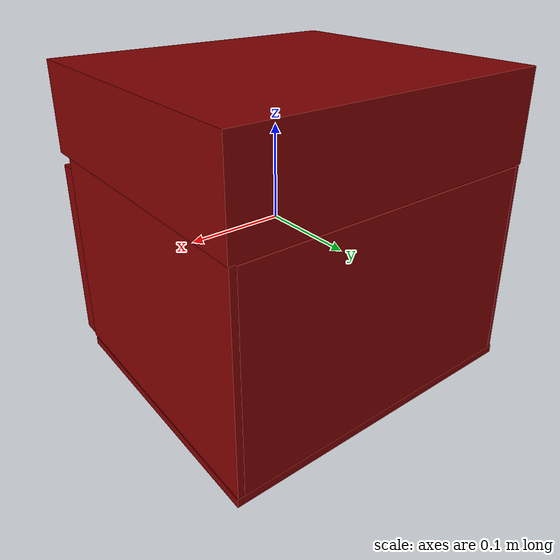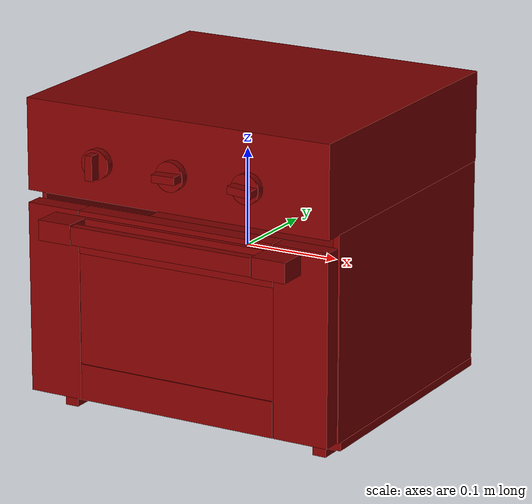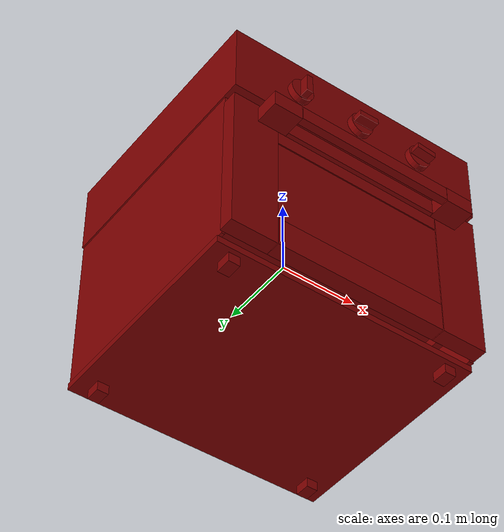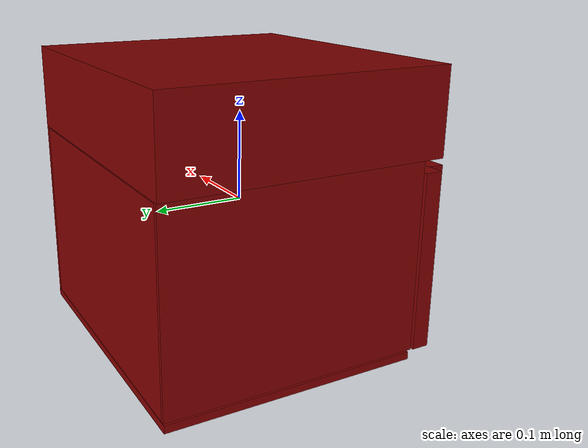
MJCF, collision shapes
<?xml version='1.0' encoding='UTF-8'?>
<mujoco model="model">
  <compiler angle="radian"/>
  <asset>
    <mesh file="visuals/Body001.obj" name="Body001_vis"/>
    <mesh file="visuals/Door001.obj" name="Door001_vis"/>
    <mesh file="visuals/Door001_Clear.obj" name="Door001_Clear_vis"/>
    <mesh file="visuals/Knob001.obj" name="Knob001_vis"/>
    <mesh file="visuals/Knob002.obj" name="Knob002_vis"/>
    <mesh file="visuals/Knob003.obj" name="Knob003_vis"/>
    <mesh file="visuals/Shelf001.obj" name="Shelf001_vis"/>
    <mesh file="visuals/Shelf002.obj" name="Shelf002_vis"/>
    <texture file="visuals/T_BC001.png" name="Body001_material" type="2d"/>
    <material name="Body001_material" rgba="1 1 1 1.0" texture="Body001_material" shininess="0.40476077795028687" specular="1.5"/>
    <texture file="visuals/T_BC001.png" name="Door001_material" type="2d"/>
    <material name="Door001_material" rgba="1 1 1 1.0" texture="Door001_material" shininess="0.40476077795028687" specular="0.5"/>
    <texture file="visuals/T_BC001.png" name="Door001_Clear_material" type="2d"/>
    <material name="Door001_Clear_material" rgba="1 1 1 0.800000011920929" texture="Door001_Clear_material" shininess="0.5" specular="0.3103448502657381"/>
    <texture file="visuals/T_BC001.png" name="Knob001_material" type="2d"/>
    <material name="Knob001_material" rgba="1 1 1 1.0" texture="Knob001_material" shininess="0.40476077795028687" specular="0.3103448502657381"/>
    <texture file="visuals/T_BC001.png" name="Knob002_material" type="2d"/>
    <material name="Knob002_material" rgba="1 1 1 1.0" texture="Knob002_material" shininess="0.40476077795028687" specular="0.3103448502657381"/>
    <texture file="visuals/T_BC001.png" name="Knob003_material" type="2d"/>
    <material name="Knob003_material" rgba="1 1 1 1.0" texture="Knob003_material" shininess="0.40476077795028687" specular="0.3103448502657381"/>
    <texture file="visuals/T_BC001.png" name="Shelf001_material" type="2d"/>
    <material name="Shelf001_material" rgba="1 1 1 1.0" texture="Shelf001_material" shininess="0.40476077795028687" specular="2"/>
    <texture file="visuals/T_BC001.png" name="Shelf002_material" type="2d"/>
    <material name="Shelf002_material" rgba="1 1 1 1.0" texture="Shelf002_material" shininess="0.40476077795028687" specular="2"/>
  </asset>
  <default>
    <default class="visual">
      <geom conaffinity="0" contype="0" group="1" type="mesh"/>
    </default>
    <default class="collision">
      <geom group="0" rgba="0.5 0 0 0.5"/>
    </default>
    <default class="spawn">
      <geom group="0" rgba="1 1 1 0.5" contype="0" conaffinity="0"/>
      <site group="0" rgba="1 1 1 0.5"/>
    </default>
    <default class="region">
      <geom group="1" conaffinity="0" contype="0" rgba="0 1 0 0"/>
    </default>
  </default>
  <worldbody>
    <body>
      <body name="object">
        <geom mesh="Body001_vis" type="mesh" solimp="0.998 0.998 0.001" solref="0.001 1" density="100" friction="0.95 0.3 0.1" class="visual" material="Body001_material"/>
        <geom class="collision" type="box" pos="0.000129 0.014205 0.115347" size="0.16799390316009521 0.15449689328670502 0.046898286789655685" quat="1.0 0.0 0.0 0.0"/>
        <geom class="collision" type="box" pos="0.000129 0.027268 -0.146551" size="0.16799390316009521 0.14143456518650055 0.004279122222214937" quat="1.0 0.0 0.0 0.0"/>
        <geom class="collision" type="box" pos="0.164412 0.024972 -0.036548" size="0.003169992472976446 0.14373032748699188 0.10511252284049988" quat="1.0 0.0 0.0 0.0"/>
        <geom class="collision" type="box" pos="-0.163892 0.024972 -0.036548" size="0.0020520328544080257 0.14373034238815308 0.10511252284049988" quat="1.0 0.0 0.0 0.0"/>
        <geom class="collision" type="box" pos="-0.000447 0.155160 -0.037226" size="0.1614246666431427 0.013542283326387405 0.10444756597280502" quat="1.0 0.0 0.0 0.0"/>
        <geom class="collision" type="box" pos="0.154903 0.019328 -0.086268" size="0.00484692445024848 0.12642931938171387 0.0063050612807273865" quat="1.0 0.0 0.0 0.0"/>
        <geom class="collision" type="box" pos="0.154903 0.019328 -0.024174" size="0.00484692445024848 0.12642931938171387 0.0063050612807273865" quat="1.0 0.0 0.0 0.0"/>
        <geom class="collision" type="box" pos="-0.155905 0.019328 -0.024174" size="0.00484692445024848 0.12642931938171387 0.0063050612807273865" quat="1.0 0.0 0.0 0.0"/>
        <geom class="collision" type="box" pos="-0.155905 0.019328 -0.086268" size="0.00484692445024848 0.12642931938171387 0.0063050612807273865" quat="1.0 0.0 0.0 0.0"/>
        <geom class="collision" type="box" pos="-0.142190 -0.098611 -0.156741" size="0.007177562452852726 0.009858162142336369 0.0062631466425955296" quat="1.0 0.0 0.0 0.0"/>
        <geom class="collision" type="box" pos="0.141914 -0.098611 -0.156741" size="0.007177562452852726 0.009858162142336369 0.0062631466425955296" quat="1.0 0.0 0.0 0.0"/>
        <geom class="collision" type="box" pos="0.141914 0.146397 -0.156741" size="0.007177562452852726 0.009858162142336369 0.0062631466425955296" quat="1.0 0.0 0.0 0.0"/>
        <geom class="collision" type="box" pos="-0.142190 0.146397 -0.156741" size="0.007177562452852726 0.009858162142336369 0.0062631466425955296" quat="1.0 0.0 0.0 0.0"/>
        <body name="Door001">
          <joint axis="1.0 0.0 0.0" pos="0.000000 -0.130478 -0.138188" limited="true" name="Door001_joint" range="0.0 1.5707963267948966" type="hinge" damping="1" frictionloss="1" armature=".01" stiffness="0.4" springref="-2"/>
          <geom mesh="Door001_vis" type="mesh" solimp="0.998 0.998 0.001" solref="0.001 1" density="100" friction="0.95 0.3 0.1" class="visual" material="Door001_material"/>
          <geom class="collision" type="box" pos="-0.139651 -0.129979 -0.042741" size="0.028908470645546913 0.009729273617267609 0.09801409393548965" quat="1.0 0.0 0.0 0.0"/>
          <geom class="collision" type="box" pos="0.137514 -0.129979 -0.042741" size="0.02929525636136532 0.009729273617267609 0.09801409393548965" quat="1.0 0.0 0.0 0.0"/>
          <geom class="collision" type="box" pos="-0.001434 -0.129979 -0.122029" size="0.10868487507104874 0.009729273617267609 0.018725590780377388" quat="1.0 0.0 0.0 0.0"/>
          <geom class="collision" type="box" pos="-0.001434 -0.129979 0.033646" size="0.10868487507104874 0.009729273617267609 0.021839696913957596" quat="1.0 0.0 0.0 0.0"/>
          <geom class="collision" type="box" pos="0.000353 -0.165753 0.039765" size="0.10052364319562912 0.004941307939589024 0.009371878579258919" quat="1.0 0.0 0.0 0.0"/>
          <geom class="collision" type="box" pos="0.000353 -0.141903 0.039826" size="0.10052364319562912 0.003314411034807563 0.010362689383327961" quat="1.0 0.0 0.0 0.0"/>
          <geom class="collision" type="box" pos="0.119537 -0.154512 0.039826" size="0.0181875079870224 0.015924016013741493 0.010362689383327961" quat="1.0 0.0 0.0 0.0"/>
          <geom class="collision" type="box" pos="-0.118908 -0.154512 0.039826" size="0.0181875079870224 0.015924016013741493 0.010362689383327961" quat="1.0 0.0 0.0 0.0"/>
          <body name="Door001_Clear">
            <geom mesh="Door001_Clear_vis" type="mesh" solimp="0.998 0.998 0.001" solref="0.001 1" density="100" friction="0.95 0.3 0.1" class="visual" material="Door001_Clear_material"/>
            <geom class="collision" type="box" pos="-0.001277 -0.133813 -0.045837" size="0.10990311950445175 0.004647101275622845 0.05809466168284416" quat="1.0 0.0 0.0 0.0"/>
          </body>
        </body>
        <body name="Knob001">
          <joint axis="0.0 1.0 0.0" pos="-0.083965 -0.149826 0.108350" limited="true" name="Knob001_joint" range="0.0 3.9269908169872414" type="hinge" damping="0.05" armature="0.001"/>
          <geom mesh="Knob001_vis" type="mesh" solimp="0.998 0.998 0.001" solref="0.001 1" density="100" friction="0.95 0.3 0.1" class="visual" material="Knob001_material"/>
          <geom class="collision" type="cylinder" pos="-0.084027 -0.146483 0.108434" size="0.015089793130755424 0.004180982243269682" quat="0.29001113772392273 0.29001107811927795 -0.6448981761932373 0.6448980569839478"/>
          <geom class="collision" type="box" pos="-0.083621 -0.156136 0.107884" size="0.003915501292794943 0.006732615176588297 0.012667737901210785" quat="0.0012701309751719236 0.0 0.9999991655349731 0.0"/>
        </body>
        <body name="Knob002">
          <joint axis="0.0 1.0 0.0" pos="-0.000245 -0.149826 0.108350" limited="true" name="Knob002_joint" range="0.0 3.3161255787892263" type="hinge" damping="0.05" armature="0.001"/>
          <geom mesh="Knob002_vis" type="mesh" solimp="0.998 0.998 0.001" solref="0.001 1" density="100" friction="0.95 0.3 0.1" class="visual" material="Knob002_material"/>
          <geom class="collision" type="cylinder" pos="-0.000365 -0.146483 0.108434" size="0.015089793130755424 0.004180982243269682" quat="0.29001113772392273 0.29001107811927795 -0.6448981761932373 0.6448980569839478"/>
          <geom class="collision" type="box" pos="0.000041 -0.156136 0.108668" size="0.003915501292794943 0.006732615176588297 0.012667737901210785" quat="0.7162219882011414 0.0 0.697872519493103 0.0"/>
        </body>
        <body name="Knob003">
          <joint axis="0.0 1.0 0.0" pos="0.083031 -0.149826 0.108350" limited="true" name="Knob003_joint" range="0.0 3.3161255787892263" type="hinge" damping="0.05" armature="0.001"/>
          <geom mesh="Knob003_vis" type="mesh" solimp="0.998 0.998 0.001" solref="0.001 1" density="100" friction="0.95 0.3 0.1" class="visual" material="Knob003_material"/>
          <geom class="collision" type="cylinder" pos="0.083059 -0.146483 0.108434" size="0.015089793130755424 0.004180982243269682" quat="0.29001113772392273 0.29001107811927795 -0.6448981761932373 0.6448980569839478"/>
          <geom class="collision" type="box" pos="0.083465 -0.156136 0.108541" size="0.003915501292794943 0.006732615176588297 0.012667737901210785" quat="0.6758393049240112 0.0 0.7370489835739136 0.0"/>
        </body>
        <body name="Shelf001">
          <joint axis="0.0 -1.0 0.0" pos="-0.000317 0.009504 -0.016043" limited="true" name="Shelf001_joint" range="0.0 0.2" type="slide" damping="1" frictionloss="1" armature=".01" stiffness="0.05"/>
          <geom mesh="Shelf001_vis" type="mesh" solimp="0.998 0.998 0.001" solref="0.001 1" density="100" friction="0.95 0.3 0.1" class="visual" material="Shelf001_material"/>
          <geom class="collision" type="box" pos="-0.000372 0.009310 -0.016045" size="0.15958759188652039 0.11407769471406937 0.0017067822627723217" quat="1.0 0.0 0.0 0.0"/>
        </body>
        <body name="Shelf002">
          <joint axis="0.0 -1.0 0.0" pos="-0.000317 0.009537 -0.078211" limited="true" name="Shelf002_joint" range="0.0 0.2" type="slide" damping="1" frictionloss="1" armature=".01" stiffness="0.05"/>
          <geom mesh="Shelf002_vis" type="mesh" solimp="0.998 0.998 0.001" solref="0.001 1" density="100" friction="0.95 0.3 0.1" class="visual" material="Shelf002_material"/>
          <geom class="collision" type="box" pos="-0.000372 0.009310 -0.077946" size="0.15958759188652039 0.11407769471406937 0.0017067822627723217" quat="1.0 0.0 0.0 0.0"/>
        </body>
        <geom class="region" name="reg_main" type="box" pos="0.0 0.01440699999999999 0.0" size="0.170107 0.156067 0.164996"/>
        <geom class="region" name="reg_int" type="box" pos="3.199999999999037e-05 0.012664999999999996 -0.039658000000000006" size="0.16300399999999998 0.13164599999999999 0.10436000000000001"/>
      </body>
    </body>
  </worldbody>
  <actuator>
    <motor name="Door001_joint_actuator" joint="Door001_joint" gear="50"/>
    <motor name="Knob001_joint_actuator" joint="Knob001_joint" gear="50"/>
    <motor name="Knob002_joint_actuator" joint="Knob002_joint" gear="50"/>
    <motor name="Knob003_joint_actuator" joint="Knob003_joint" gear="50"/>
    <motor name="Shelf001_joint_actuator" joint="Shelf001_joint" gear="50"/>
    <motor name="Shelf002_joint_actuator" joint="Shelf002_joint" gear="50"/>
  </actuator>
</mujoco>
